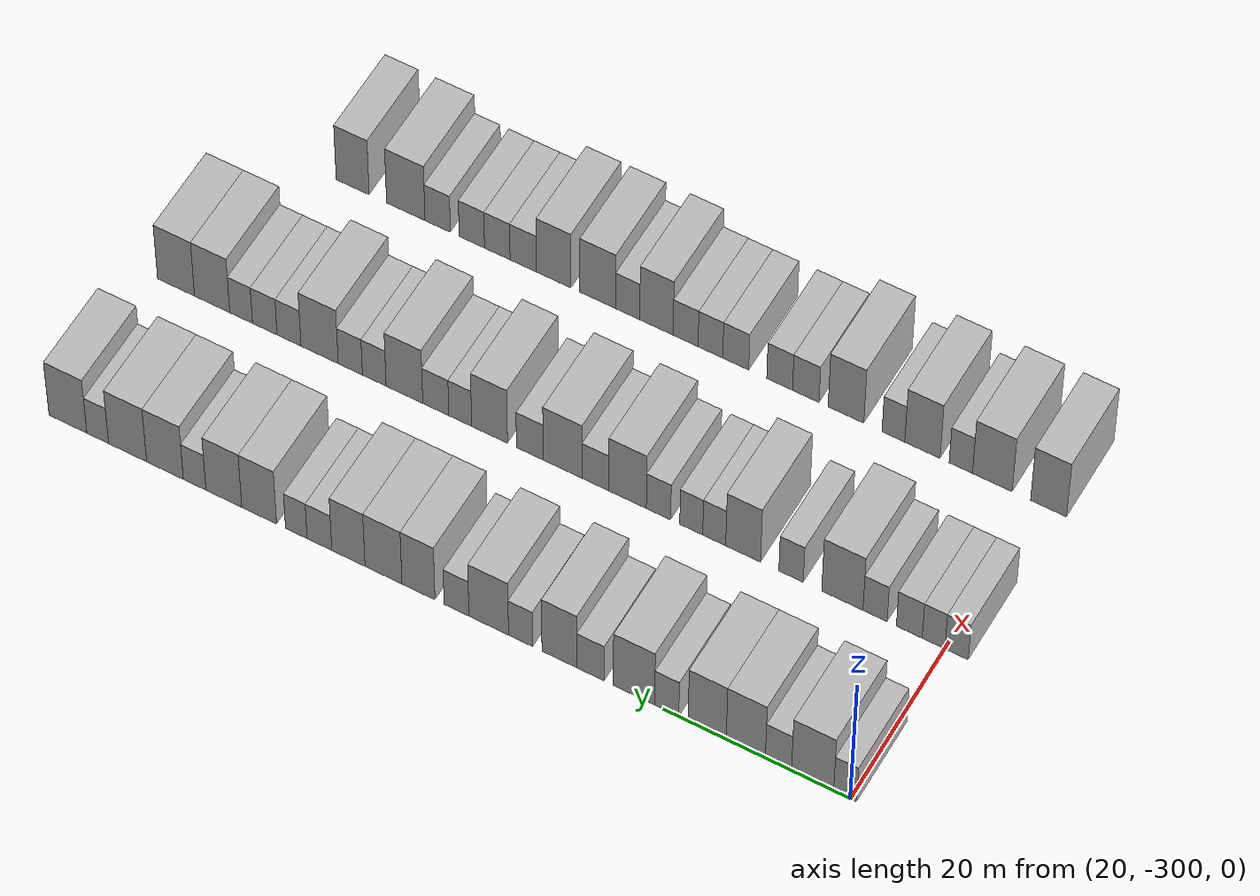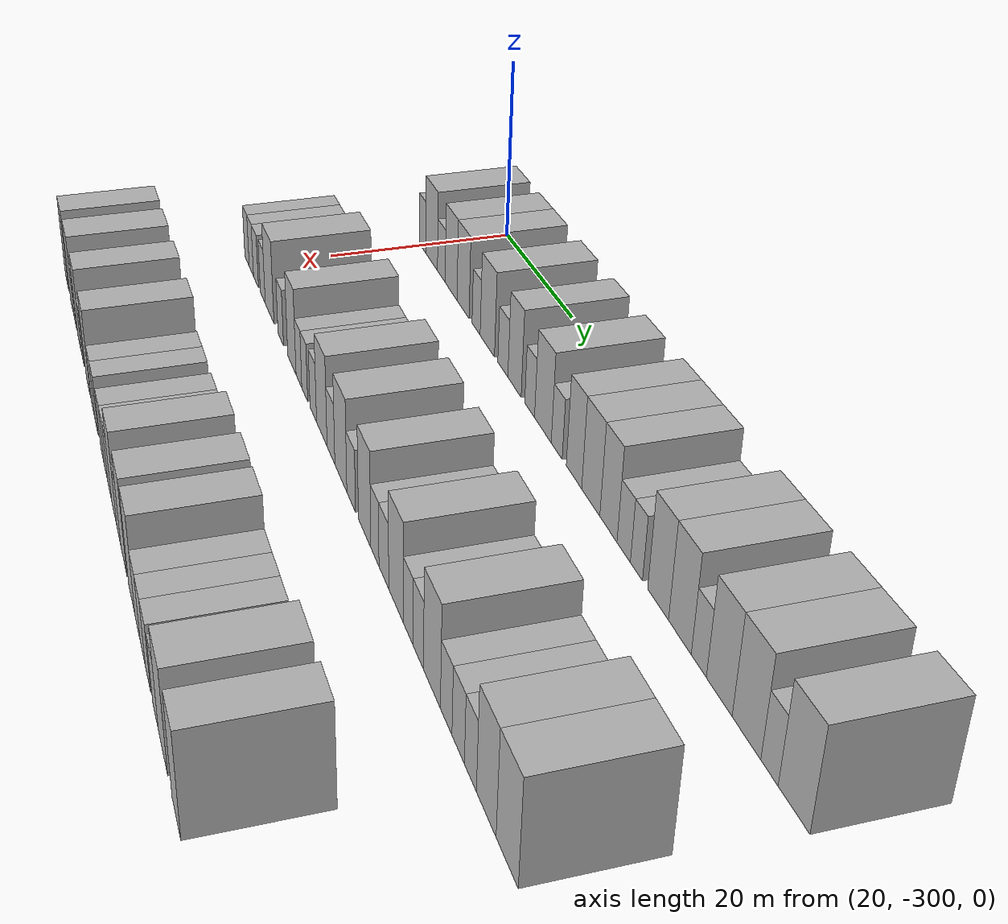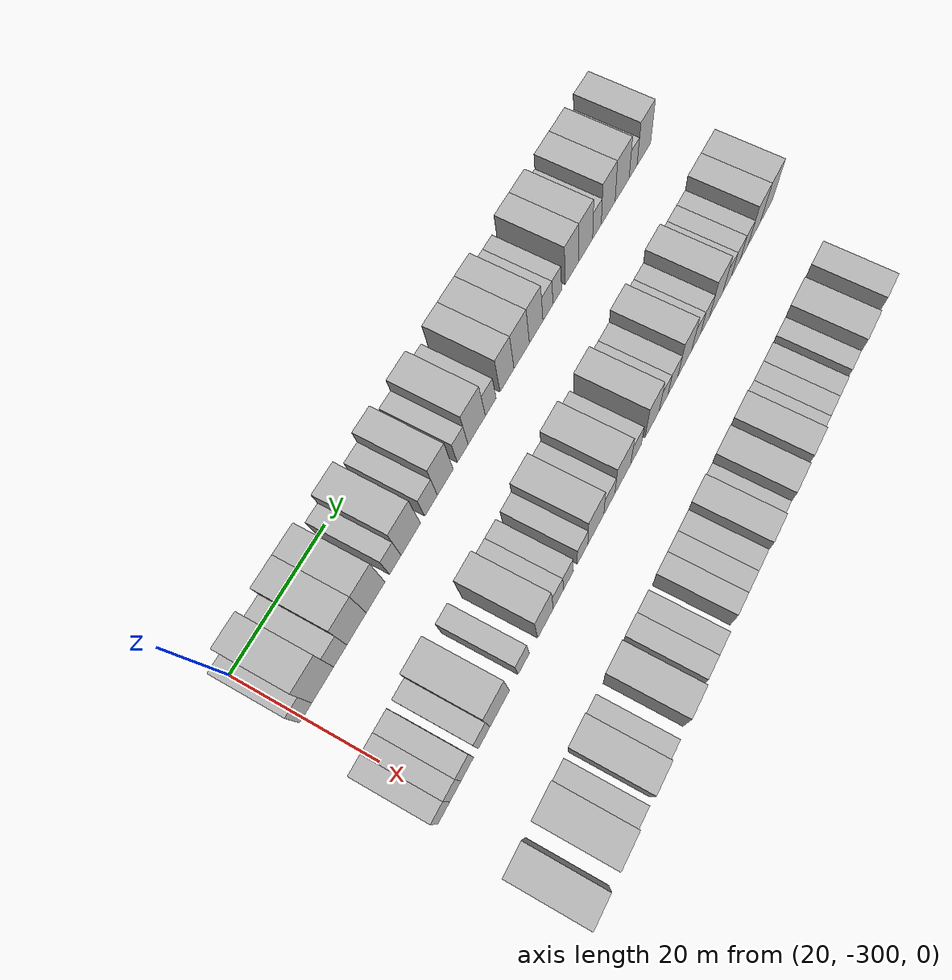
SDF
<sdf version="1.6">
 <world name="default">
  <model name="building_14">
   <static>1</static>
   <pose>25.0000 -299.3981 0 0.000000 0.000000 0.000000</pose>
   <link name="link">
    <pose>0 0 3.00 0 0 0</pose>
    <collision name="collision"><geometry><box><size>10.0000 2.4443 6.0000</size></box></geometry></collision>
    <visual name="visual">
     <cast_shadows>0</cast_shadows>
     <geometry><box><size>10.0000 2.4443 6.0000</size></box></geometry>
     <material>
      <script>
       <uri>model://HANNAS_wall/materials/scripts</uri>
       <uri>model://HANNAS_wall/materials/textures</uri>
       <name>vrc/HANNAS_wall</name>
      </script>
     </material>
    </visual>
   </link>
  </model>
  <model name="building_15">
   <static>1</static>
   <pose>25.0000 -295.9306 0 0.000000 0.000000 0.000000</pose>
   <link name="link">
    <pose>0 0 4.50 0 0 0</pose>
    <collision name="collision"><geometry><box><size>10.0000 4.4907 9.0000</size></box></geometry></collision>
    <visual name="visual">
     <cast_shadows>0</cast_shadows>
     <geometry><box><size>10.0000 4.4907 9.0000</size></box></geometry>
     <material>
      <script>
       <uri>model://HANNAS_wall/materials/scripts</uri>
       <uri>model://HANNAS_wall/materials/textures</uri>
       <name>vrc/HANNAS_wall</name>
      </script>
     </material>
    </visual>
   </link>
  </model>
  <model name="building_16">
   <static>1</static>
   <pose>25.0000 -292.2877 0 0.000000 0.000000 0.000000</pose>
   <link name="link">
    <pose>0 0 3.00 0 0 0</pose>
    <collision name="collision"><geometry><box><size>10.0000 2.7952 6.0000</size></box></geometry></collision>
    <visual name="visual">
     <cast_shadows>0</cast_shadows>
     <geometry><box><size>10.0000 2.7952 6.0000</size></box></geometry>
     <material>
      <script>
       <uri>model://HANNAS_wall/materials/scripts</uri>
       <uri>model://HANNAS_wall/materials/textures</uri>
       <name>vrc/HANNAS_wall</name>
      </script>
     </material>
    </visual>
   </link>
  </model>
  <model name="building_17">
   <static>1</static>
   <pose>25.0000 -288.7944 0 0.000000 0.000000 0.000000</pose>
   <link name="link">
    <pose>0 0 4.50 0 0 0</pose>
    <collision name="collision"><geometry><box><size>10.0000 4.1914 9.0000</size></box></geometry></collision>
    <visual name="visual">
     <cast_shadows>0</cast_shadows>
     <geometry><box><size>10.0000 4.1914 9.0000</size></box></geometry>
     <material>
      <script>
       <uri>model://HANNAS_wall/materials/scripts</uri>
       <uri>model://HANNAS_wall/materials/textures</uri>
       <name>vrc/HANNAS_wall</name>
      </script>
     </material>
    </visual>
   </link>
  </model>
  <model name="building_18">
   <static>1</static>
   <pose>25.0000 -284.6509 0 0.000000 0.000000 0.000000</pose>
   <link name="link">
    <pose>0 0 4.50 0 0 0</pose>
    <collision name="collision"><geometry><box><size>10.0000 4.0955 9.0000</size></box></geometry></collision>
    <visual name="visual">
     <cast_shadows>0</cast_shadows>
     <geometry><box><size>10.0000 4.0955 9.0000</size></box></geometry>
     <material>
      <script>
       <uri>model://HANNAS_wall/materials/scripts</uri>
       <uri>model://HANNAS_wall/materials/textures</uri>
       <name>vrc/HANNAS_wall</name>
      </script>
     </material>
    </visual>
   </link>
  </model>
  <model name="building_19">
   <static>1</static>
   <pose>25.0000 -280.2972 0 0.000000 0.000000 0.000000</pose>
   <link name="link">
    <pose>0 0 3.00 0 0 0</pose>
    <collision name="collision"><geometry><box><size>10.0000 2.6119 6.0000</size></box></geometry></collision>
    <visual name="visual">
     <cast_shadows>0</cast_shadows>
     <geometry><box><size>10.0000 2.6119 6.0000</size></box></geometry>
     <material>
      <script>
       <uri>model://HANNAS_wall/materials/scripts</uri>
       <uri>model://HANNAS_wall/materials/textures</uri>
       <name>vrc/HANNAS_wall</name>
      </script>
     </material>
    </visual>
   </link>
  </model>
  <model name="building_20">
   <static>1</static>
   <pose>25.0000 -276.7562 0 0.000000 0.000000 0.000000</pose>
   <link name="link">
    <pose>0 0 4.50 0 0 0</pose>
    <collision name="collision"><geometry><box><size>10.0000 4.4702 9.0000</size></box></geometry></collision>
    <visual name="visual">
     <cast_shadows>0</cast_shadows>
     <geometry><box><size>10.0000 4.4702 9.0000</size></box></geometry>
     <material>
      <script>
       <uri>model://HANNAS_wall/materials/scripts</uri>
       <uri>model://HANNAS_wall/materials/textures</uri>
       <name>vrc/HANNAS_wall</name>
      </script>
     </material>
    </visual>
   </link>
  </model>
  <model name="building_21">
   <static>1</static>
   <pose>25.0000 -272.0339 0 0.000000 0.000000 0.000000</pose>
   <link name="link">
    <pose>0 0 3.00 0 0 0</pose>
    <collision name="collision"><geometry><box><size>10.0000 2.9745 6.0000</size></box></geometry></collision>
    <visual name="visual">
     <cast_shadows>0</cast_shadows>
     <geometry><box><size>10.0000 2.9745 6.0000</size></box></geometry>
     <material>
      <script>
       <uri>model://HANNAS_wall/materials/scripts</uri>
       <uri>model://HANNAS_wall/materials/textures</uri>
       <name>vrc/HANNAS_wall</name>
      </script>
     </material>
    </visual>
   </link>
  </model>
  <model name="building_22">
   <static>1</static>
   <pose>25.0000 -268.6552 0 0.000000 0.000000 0.000000</pose>
   <link name="link">
    <pose>0 0 4.50 0 0 0</pose>
    <collision name="collision"><geometry><box><size>10.0000 3.7829 9.0000</size></box></geometry></collision>
    <visual name="visual">
     <cast_shadows>0</cast_shadows>
     <geometry><box><size>10.0000 3.7829 9.0000</size></box></geometry>
     <material>
      <script>
       <uri>model://HANNAS_wall/materials/scripts</uri>
       <uri>model://HANNAS_wall/materials/textures</uri>
       <name>vrc/HANNAS_wall</name>
      </script>
     </material>
    </visual>
   </link>
  </model>
  <model name="building_23">
   <static>1</static>
   <pose>25.0000 -264.4368 0 0.000000 0.000000 0.000000</pose>
   <link name="link">
    <pose>0 0 3.00 0 0 0</pose>
    <collision name="collision"><geometry><box><size>10.0000 2.6539 6.0000</size></box></geometry></collision>
    <visual name="visual">
     <cast_shadows>0</cast_shadows>
     <geometry><box><size>10.0000 2.6539 6.0000</size></box></geometry>
     <material>
      <script>
       <uri>model://HANNAS_wall/materials/scripts</uri>
       <uri>model://HANNAS_wall/materials/textures</uri>
       <name>vrc/HANNAS_wall</name>
      </script>
     </material>
    </visual>
   </link>
  </model>
  <model name="building_24">
   <static>1</static>
   <pose>25.0000 -260.9407 0 0.000000 0.000000 0.000000</pose>
   <link name="link">
    <pose>0 0 4.50 0 0 0</pose>
    <collision name="collision"><geometry><box><size>10.0000 4.3383 9.0000</size></box></geometry></collision>
    <visual name="visual">
     <cast_shadows>0</cast_shadows>
     <geometry><box><size>10.0000 4.3383 9.0000</size></box></geometry>
     <material>
      <script>
       <uri>model://HANNAS_wall/materials/scripts</uri>
       <uri>model://HANNAS_wall/materials/textures</uri>
       <name>vrc/HANNAS_wall</name>
      </script>
     </material>
    </visual>
   </link>
  </model>
  <model name="building_25">
   <static>1</static>
   <pose>25.0000 -257.4051 0 0.000000 0.000000 0.000000</pose>
   <link name="link">
    <pose>0 0 3.00 0 0 0</pose>
    <collision name="collision"><geometry><box><size>10.0000 2.7328 6.0000</size></box></geometry></collision>
    <visual name="visual">
     <cast_shadows>0</cast_shadows>
     <geometry><box><size>10.0000 2.7328 6.0000</size></box></geometry>
     <material>
      <script>
       <uri>model://HANNAS_wall/materials/scripts</uri>
       <uri>model://HANNAS_wall/materials/textures</uri>
       <name>vrc/HANNAS_wall</name>
      </script>
     </material>
    </visual>
   </link>
  </model>
  <model name="building_26">
   <static>1</static>
   <pose>25.0000 -253.2176 0 0.000000 0.000000 0.000000</pose>
   <link name="link">
    <pose>0 0 4.50 0 0 0</pose>
    <collision name="collision"><geometry><box><size>10.0000 3.6423 9.0000</size></box></geometry></collision>
    <visual name="visual">
     <cast_shadows>0</cast_shadows>
     <geometry><box><size>10.0000 3.6423 9.0000</size></box></geometry>
     <material>
      <script>
       <uri>model://HANNAS_wall/materials/scripts</uri>
       <uri>model://HANNAS_wall/materials/textures</uri>
       <name>vrc/HANNAS_wall</name>
      </script>
     </material>
    </visual>
   </link>
  </model>
  <model name="building_27">
   <static>1</static>
   <pose>25.0000 -249.3511 0 0.000000 0.000000 0.000000</pose>
   <link name="link">
    <pose>0 0 4.50 0 0 0</pose>
    <collision name="collision"><geometry><box><size>10.0000 4.0905 9.0000</size></box></geometry></collision>
    <visual name="visual">
     <cast_shadows>0</cast_shadows>
     <geometry><box><size>10.0000 4.0905 9.0000</size></box></geometry>
     <material>
      <script>
       <uri>model://HANNAS_wall/materials/scripts</uri>
       <uri>model://HANNAS_wall/materials/textures</uri>
       <name>vrc/HANNAS_wall</name>
      </script>
     </material>
    </visual>
   </link>
  </model>
  <model name="building_28">
   <static>1</static>
   <pose>25.0000 -245.4630 0 0.000000 0.000000 0.000000</pose>
   <link name="link">
    <pose>0 0 4.50 0 0 0</pose>
    <collision name="collision"><geometry><box><size>10.0000 3.6857 9.0000</size></box></geometry></collision>
    <visual name="visual">
     <cast_shadows>0</cast_shadows>
     <geometry><box><size>10.0000 3.6857 9.0000</size></box></geometry>
     <material>
      <script>
       <uri>model://HANNAS_wall/materials/scripts</uri>
       <uri>model://HANNAS_wall/materials/textures</uri>
       <name>vrc/HANNAS_wall</name>
      </script>
     </material>
    </visual>
   </link>
  </model>
  <model name="building_29">
   <static>1</static>
   <pose>25.0000 -242.2461 0 0.000000 0.000000 0.000000</pose>
   <link name="link">
    <pose>0 0 3.00 0 0 0</pose>
    <collision name="collision"><geometry><box><size>10.0000 2.7482 6.0000</size></box></geometry></collision>
    <visual name="visual">
     <cast_shadows>0</cast_shadows>
     <geometry><box><size>10.0000 2.7482 6.0000</size></box></geometry>
     <material>
      <script>
       <uri>model://HANNAS_wall/materials/scripts</uri>
       <uri>model://HANNAS_wall/materials/textures</uri>
       <name>vrc/HANNAS_wall</name>
      </script>
     </material>
    </visual>
   </link>
  </model>
  <model name="building_30">
   <static>1</static>
   <pose>25.0000 -239.6683 0 0.000000 0.000000 0.000000</pose>
   <link name="link">
    <pose>0 0 3.00 0 0 0</pose>
    <collision name="collision"><geometry><box><size>10.0000 2.4075 6.0000</size></box></geometry></collision>
    <visual name="visual">
     <cast_shadows>0</cast_shadows>
     <geometry><box><size>10.0000 2.4075 6.0000</size></box></geometry>
     <material>
      <script>
       <uri>model://HANNAS_wall/materials/scripts</uri>
       <uri>model://HANNAS_wall/materials/textures</uri>
       <name>vrc/HANNAS_wall</name>
      </script>
     </material>
    </visual>
   </link>
  </model>
  <model name="building_31">
   <static>1</static>
   <pose>25.0000 -235.5152 0 0.000000 0.000000 0.000000</pose>
   <link name="link">
    <pose>0 0 4.50 0 0 0</pose>
    <collision name="collision"><geometry><box><size>10.0000 3.8986 9.0000</size></box></geometry></collision>
    <visual name="visual">
     <cast_shadows>0</cast_shadows>
     <geometry><box><size>10.0000 3.8986 9.0000</size></box></geometry>
     <material>
      <script>
       <uri>model://HANNAS_wall/materials/scripts</uri>
       <uri>model://HANNAS_wall/materials/textures</uri>
       <name>vrc/HANNAS_wall</name>
      </script>
     </material>
    </visual>
   </link>
  </model>
  <model name="building_32">
   <static>1</static>
   <pose>25.0000 -231.5533 0 0.000000 0.000000 0.000000</pose>
   <link name="link">
    <pose>0 0 4.50 0 0 0</pose>
    <collision name="collision"><geometry><box><size>10.0000 4.0253 9.0000</size></box></geometry></collision>
    <visual name="visual">
     <cast_shadows>0</cast_shadows>
     <geometry><box><size>10.0000 4.0253 9.0000</size></box></geometry>
     <material>
      <script>
       <uri>model://HANNAS_wall/materials/scripts</uri>
       <uri>model://HANNAS_wall/materials/textures</uri>
       <name>vrc/HANNAS_wall</name>
      </script>
     </material>
    </visual>
   </link>
  </model>
  <model name="building_33">
   <static>1</static>
   <pose>25.0000 -228.2689 0 0.000000 0.000000 0.000000</pose>
   <link name="link">
    <pose>0 0 3.00 0 0 0</pose>
    <collision name="collision"><geometry><box><size>10.0000 2.5436 6.0000</size></box></geometry></collision>
    <visual name="visual">
     <cast_shadows>0</cast_shadows>
     <geometry><box><size>10.0000 2.5436 6.0000</size></box></geometry>
     <material>
      <script>
       <uri>model://HANNAS_wall/materials/scripts</uri>
       <uri>model://HANNAS_wall/materials/textures</uri>
       <name>vrc/HANNAS_wall</name>
      </script>
     </material>
    </visual>
   </link>
  </model>
  <model name="building_34">
   <static>1</static>
   <pose>25.0000 -224.9257 0 0.000000 0.000000 0.000000</pose>
   <link name="link">
    <pose>0 0 4.50 0 0 0</pose>
    <collision name="collision"><geometry><box><size>10.0000 4.1428 9.0000</size></box></geometry></collision>
    <visual name="visual">
     <cast_shadows>0</cast_shadows>
     <geometry><box><size>10.0000 4.1428 9.0000</size></box></geometry>
     <material>
      <script>
       <uri>model://HANNAS_wall/materials/scripts</uri>
       <uri>model://HANNAS_wall/materials/textures</uri>
       <name>vrc/HANNAS_wall</name>
      </script>
     </material>
    </visual>
   </link>
  </model>
  <model name="building_35">
   <static>1</static>
   <pose>25.0000 -220.6981 0 0.000000 0.000000 0.000000</pose>
   <link name="link">
    <pose>0 0 4.50 0 0 0</pose>
    <collision name="collision"><geometry><box><size>10.0000 4.3123 9.0000</size></box></geometry></collision>
    <visual name="visual">
     <cast_shadows>0</cast_shadows>
     <geometry><box><size>10.0000 4.3123 9.0000</size></box></geometry>
     <material>
      <script>
       <uri>model://HANNAS_wall/materials/scripts</uri>
       <uri>model://HANNAS_wall/materials/textures</uri>
       <name>vrc/HANNAS_wall</name>
      </script>
     </material>
    </visual>
   </link>
  </model>
  <model name="building_36">
   <static>1</static>
   <pose>25.0000 -217.3128 0 0.000000 0.000000 0.000000</pose>
   <link name="link">
    <pose>0 0 3.00 0 0 0</pose>
    <collision name="collision"><geometry><box><size>10.0000 2.4584 6.0000</size></box></geometry></collision>
    <visual name="visual">
     <cast_shadows>0</cast_shadows>
     <geometry><box><size>10.0000 2.4584 6.0000</size></box></geometry>
     <material>
      <script>
       <uri>model://HANNAS_wall/materials/scripts</uri>
       <uri>model://HANNAS_wall/materials/textures</uri>
       <name>vrc/HANNAS_wall</name>
      </script>
     </material>
    </visual>
   </link>
  </model>
  <model name="building_37">
   <static>1</static>
   <pose>25.0000 -213.9316 0 0.000000 0.000000 0.000000</pose>
   <link name="link">
    <pose>0 0 4.50 0 0 0</pose>
    <collision name="collision"><geometry><box><size>10.0000 4.3039 9.0000</size></box></geometry></collision>
    <visual name="visual">
     <cast_shadows>0</cast_shadows>
     <geometry><box><size>10.0000 4.3039 9.0000</size></box></geometry>
     <material>
      <script>
       <uri>model://HANNAS_wall/materials/scripts</uri>
       <uri>model://HANNAS_wall/materials/textures</uri>
       <name>vrc/HANNAS_wall</name>
      </script>
     </material>
    </visual>
   </link>
  </model>
  <model name="building_184">
   <static>1</static>
   <pose>44.0000 -301.1924 0 0.000000 0.000000 0.000000</pose>
   <link name="link">
    <pose>0 0 3.00 0 0 0</pose>
    <collision name="collision"><geometry><box><size>10.0000 2.4932 6.0000</size></box></geometry></collision>
    <visual name="visual">
     <cast_shadows>0</cast_shadows>
     <geometry><box><size>10.0000 2.4932 6.0000</size></box></geometry>
     <material>
      <script>
       <uri>model://HANNAS_wall/materials/scripts</uri>
       <uri>model://HANNAS_wall/materials/textures</uri>
       <name>vrc/HANNAS_wall</name>
      </script>
     </material>
    </visual>
   </link>
  </model>
  <model name="building_185">
   <static>1</static>
   <pose>44.0000 -298.7267 0 0.000000 0.000000 0.000000</pose>
   <link name="link">
    <pose>0 0 3.00 0 0 0</pose>
    <collision name="collision"><geometry><box><size>10.0000 2.4382 6.0000</size></box></geometry></collision>
    <visual name="visual">
     <cast_shadows>0</cast_shadows>
     <geometry><box><size>10.0000 2.4382 6.0000</size></box></geometry>
     <material>
      <script>
       <uri>model://HANNAS_wall/materials/scripts</uri>
       <uri>model://HANNAS_wall/materials/textures</uri>
       <name>vrc/HANNAS_wall</name>
      </script>
     </material>
    </visual>
   </link>
  </model>
  <model name="building_186">
   <static>1</static>
   <pose>44.0000 -296.1205 0 0.000000 0.000000 0.000000</pose>
   <link name="link">
    <pose>0 0 3.00 0 0 0</pose>
    <collision name="collision"><geometry><box><size>10.0000 2.7741 6.0000</size></box></geometry></collision>
    <visual name="visual">
     <cast_shadows>0</cast_shadows>
     <geometry><box><size>10.0000 2.7741 6.0000</size></box></geometry>
     <material>
      <script>
       <uri>model://HANNAS_wall/materials/scripts</uri>
       <uri>model://HANNAS_wall/materials/textures</uri>
       <name>vrc/HANNAS_wall</name>
      </script>
     </material>
    </visual>
   </link>
  </model>
  <model name="building_187">
   <static>1</static>
   <pose>44.0000 -292.4271 0 0.000000 0.000000 0.000000</pose>
   <link name="link">
    <pose>0 0 3.00 0 0 0</pose>
    <collision name="collision"><geometry><box><size>10.0000 2.6128 6.0000</size></box></geometry></collision>
    <visual name="visual">
     <cast_shadows>0</cast_shadows>
     <geometry><box><size>10.0000 2.6128 6.0000</size></box></geometry>
     <material>
      <script>
       <uri>model://HANNAS_wall/materials/scripts</uri>
       <uri>model://HANNAS_wall/materials/textures</uri>
       <name>vrc/HANNAS_wall</name>
      </script>
     </material>
    </visual>
   </link>
  </model>
  <model name="building_188">
   <static>1</static>
   <pose>44.0000 -288.8939 0 0.000000 0.000000 0.000000</pose>
   <link name="link">
    <pose>0 0 4.50 0 0 0</pose>
    <collision name="collision"><geometry><box><size>10.0000 4.4536 9.0000</size></box></geometry></collision>
    <visual name="visual">
     <cast_shadows>0</cast_shadows>
     <geometry><box><size>10.0000 4.4536 9.0000</size></box></geometry>
     <material>
      <script>
       <uri>model://HANNAS_wall/materials/scripts</uri>
       <uri>model://HANNAS_wall/materials/textures</uri>
       <name>vrc/HANNAS_wall</name>
      </script>
     </material>
    </visual>
   </link>
  </model>
  <model name="building_189">
   <static>1</static>
   <pose>44.0000 -283.3389 0 0.000000 0.000000 0.000000</pose>
   <link name="link">
    <pose>0 0 3.00 0 0 0</pose>
    <collision name="collision"><geometry><box><size>10.0000 2.6565 6.0000</size></box></geometry></collision>
    <visual name="visual">
     <cast_shadows>0</cast_shadows>
     <geometry><box><size>10.0000 2.6565 6.0000</size></box></geometry>
     <material>
      <script>
       <uri>model://HANNAS_wall/materials/scripts</uri>
       <uri>model://HANNAS_wall/materials/textures</uri>
       <name>vrc/HANNAS_wall</name>
      </script>
     </material>
    </visual>
   </link>
  </model>
  <model name="building_190">
   <static>1</static>
   <pose>44.0000 -278.1129 0 0.000000 0.000000 0.000000</pose>
   <link name="link">
    <pose>0 0 4.50 0 0 0</pose>
    <collision name="collision"><geometry><box><size>10.0000 3.7954 9.0000</size></box></geometry></collision>
    <visual name="visual">
     <cast_shadows>0</cast_shadows>
     <geometry><box><size>10.0000 3.7954 9.0000</size></box></geometry>
     <material>
      <script>
       <uri>model://HANNAS_wall/materials/scripts</uri>
       <uri>model://HANNAS_wall/materials/textures</uri>
       <name>vrc/HANNAS_wall</name>
      </script>
     </material>
    </visual>
   </link>
  </model>
  <model name="building_191">
   <static>1</static>
   <pose>44.0000 -274.9564 0 0.000000 0.000000 0.000000</pose>
   <link name="link">
    <pose>0 0 3.00 0 0 0</pose>
    <collision name="collision"><geometry><box><size>10.0000 2.5177 6.0000</size></box></geometry></collision>
    <visual name="visual">
     <cast_shadows>0</cast_shadows>
     <geometry><box><size>10.0000 2.5177 6.0000</size></box></geometry>
     <material>
      <script>
       <uri>model://HANNAS_wall/materials/scripts</uri>
       <uri>model://HANNAS_wall/materials/textures</uri>
       <name>vrc/HANNAS_wall</name>
      </script>
     </material>
    </visual>
   </link>
  </model>
  <model name="building_192">
   <static>1</static>
   <pose>44.0000 -272.4423 0 0.000000 0.000000 0.000000</pose>
   <link name="link">
    <pose>0 0 3.00 0 0 0</pose>
    <collision name="collision"><geometry><box><size>10.0000 2.5103 6.0000</size></box></geometry></collision>
    <visual name="visual">
     <cast_shadows>0</cast_shadows>
     <geometry><box><size>10.0000 2.5103 6.0000</size></box></geometry>
     <material>
      <script>
       <uri>model://HANNAS_wall/materials/scripts</uri>
       <uri>model://HANNAS_wall/materials/textures</uri>
       <name>vrc/HANNAS_wall</name>
      </script>
     </material>
    </visual>
   </link>
  </model>
  <model name="building_193">
   <static>1</static>
   <pose>44.0000 -268.8474 0 0.000000 0.000000 0.000000</pose>
   <link name="link">
    <pose>0 0 3.00 0 0 0</pose>
    <collision name="collision"><geometry><box><size>10.0000 2.6795 6.0000</size></box></geometry></collision>
    <visual name="visual">
     <cast_shadows>0</cast_shadows>
     <geometry><box><size>10.0000 2.6795 6.0000</size></box></geometry>
     <material>
      <script>
       <uri>model://HANNAS_wall/materials/scripts</uri>
       <uri>model://HANNAS_wall/materials/textures</uri>
       <name>vrc/HANNAS_wall</name>
      </script>
     </material>
    </visual>
   </link>
  </model>
  <model name="building_194">
   <static>1</static>
   <pose>44.0000 -265.4346 0 0.000000 0.000000 0.000000</pose>
   <link name="link">
    <pose>0 0 4.50 0 0 0</pose>
    <collision name="collision"><geometry><box><size>10.0000 4.1463 9.0000</size></box></geometry></collision>
    <visual name="visual">
     <cast_shadows>0</cast_shadows>
     <geometry><box><size>10.0000 4.1463 9.0000</size></box></geometry>
     <material>
      <script>
       <uri>model://HANNAS_wall/materials/scripts</uri>
       <uri>model://HANNAS_wall/materials/textures</uri>
       <name>vrc/HANNAS_wall</name>
      </script>
     </material>
    </visual>
   </link>
  </model>
  <model name="building_195">
   <static>1</static>
   <pose>44.0000 -261.8901 0 0.000000 0.000000 0.000000</pose>
   <link name="link">
    <pose>0 0 3.00 0 0 0</pose>
    <collision name="collision"><geometry><box><size>10.0000 2.9425 6.0000</size></box></geometry></collision>
    <visual name="visual">
     <cast_shadows>0</cast_shadows>
     <geometry><box><size>10.0000 2.9425 6.0000</size></box></geometry>
     <material>
      <script>
       <uri>model://HANNAS_wall/materials/scripts</uri>
       <uri>model://HANNAS_wall/materials/textures</uri>
       <name>vrc/HANNAS_wall</name>
      </script>
     </material>
    </visual>
   </link>
  </model>
  <model name="building_196">
   <static>1</static>
   <pose>44.0000 -258.2585 0 0.000000 0.000000 0.000000</pose>
   <link name="link">
    <pose>0 0 4.50 0 0 0</pose>
    <collision name="collision"><geometry><box><size>10.0000 4.3207 9.0000</size></box></geometry></collision>
    <visual name="visual">
     <cast_shadows>0</cast_shadows>
     <geometry><box><size>10.0000 4.3207 9.0000</size></box></geometry>
     <material>
      <script>
       <uri>model://HANNAS_wall/materials/scripts</uri>
       <uri>model://HANNAS_wall/materials/textures</uri>
       <name>vrc/HANNAS_wall</name>
      </script>
     </material>
    </visual>
   </link>
  </model>
  <model name="building_197">
   <static>1</static>
   <pose>44.0000 -254.6154 0 0.000000 0.000000 0.000000</pose>
   <link name="link">
    <pose>0 0 3.00 0 0 0</pose>
    <collision name="collision"><geometry><box><size>10.0000 2.9656 6.0000</size></box></geometry></collision>
    <visual name="visual">
     <cast_shadows>0</cast_shadows>
     <geometry><box><size>10.0000 2.9656 6.0000</size></box></geometry>
     <material>
      <script>
       <uri>model://HANNAS_wall/materials/scripts</uri>
       <uri>model://HANNAS_wall/materials/textures</uri>
       <name>vrc/HANNAS_wall</name>
      </script>
     </material>
    </visual>
   </link>
  </model>
  <model name="building_198">
   <static>1</static>
   <pose>44.0000 -250.1329 0 0.000000 0.000000 0.000000</pose>
   <link name="link">
    <pose>0 0 4.50 0 0 0</pose>
    <collision name="collision"><geometry><box><size>10.0000 3.9993 9.0000</size></box></geometry></collision>
    <visual name="visual">
     <cast_shadows>0</cast_shadows>
     <geometry><box><size>10.0000 3.9993 9.0000</size></box></geometry>
     <material>
      <script>
       <uri>model://HANNAS_wall/materials/scripts</uri>
       <uri>model://HANNAS_wall/materials/textures</uri>
       <name>vrc/HANNAS_wall</name>
      </script>
     </material>
    </visual>
   </link>
  </model>
  <model name="building_199">
   <static>1</static>
   <pose>44.0000 -246.8532 0 0.000000 0.000000 0.000000</pose>
   <link name="link">
    <pose>0 0 3.00 0 0 0</pose>
    <collision name="collision"><geometry><box><size>10.0000 2.5602 6.0000</size></box></geometry></collision>
    <visual name="visual">
     <cast_shadows>0</cast_shadows>
     <geometry><box><size>10.0000 2.5602 6.0000</size></box></geometry>
     <material>
      <script>
       <uri>model://HANNAS_wall/materials/scripts</uri>
       <uri>model://HANNAS_wall/materials/textures</uri>
       <name>vrc/HANNAS_wall</name>
      </script>
     </material>
    </visual>
   </link>
  </model>
  <model name="building_200">
   <static>1</static>
   <pose>44.0000 -244.1136 0 0.000000 0.000000 0.000000</pose>
   <link name="link">
    <pose>0 0 3.00 0 0 0</pose>
    <collision name="collision"><geometry><box><size>10.0000 2.9191 6.0000</size></box></geometry></collision>
    <visual name="visual">
     <cast_shadows>0</cast_shadows>
     <geometry><box><size>10.0000 2.9191 6.0000</size></box></geometry>
     <material>
      <script>
       <uri>model://HANNAS_wall/materials/scripts</uri>
       <uri>model://HANNAS_wall/materials/textures</uri>
       <name>vrc/HANNAS_wall</name>
      </script>
     </material>
    </visual>
   </link>
  </model>
  <model name="building_201">
   <static>1</static>
   <pose>44.0000 -240.5940 0 0.000000 0.000000 0.000000</pose>
   <link name="link">
    <pose>0 0 4.50 0 0 0</pose>
    <collision name="collision"><geometry><box><size>10.0000 4.1201 9.0000</size></box></geometry></collision>
    <visual name="visual">
     <cast_shadows>0</cast_shadows>
     <geometry><box><size>10.0000 4.1201 9.0000</size></box></geometry>
     <material>
      <script>
       <uri>model://HANNAS_wall/materials/scripts</uri>
       <uri>model://HANNAS_wall/materials/textures</uri>
       <name>vrc/HANNAS_wall</name>
      </script>
     </material>
    </visual>
   </link>
  </model>
  <model name="building_202">
   <static>1</static>
   <pose>44.0000 -237.1974 0 0.000000 0.000000 0.000000</pose>
   <link name="link">
    <pose>0 0 3.00 0 0 0</pose>
    <collision name="collision"><geometry><box><size>10.0000 2.6731 6.0000</size></box></geometry></collision>
    <visual name="visual">
     <cast_shadows>0</cast_shadows>
     <geometry><box><size>10.0000 2.6731 6.0000</size></box></geometry>
     <material>
      <script>
       <uri>model://HANNAS_wall/materials/scripts</uri>
       <uri>model://HANNAS_wall/materials/textures</uri>
       <name>vrc/HANNAS_wall</name>
      </script>
     </material>
    </visual>
   </link>
  </model>
  <model name="building_203">
   <static>1</static>
   <pose>44.0000 -234.4923 0 0.000000 0.000000 0.000000</pose>
   <link name="link">
    <pose>0 0 3.00 0 0 0</pose>
    <collision name="collision"><geometry><box><size>10.0000 2.7370 6.0000</size></box></geometry></collision>
    <visual name="visual">
     <cast_shadows>0</cast_shadows>
     <geometry><box><size>10.0000 2.7370 6.0000</size></box></geometry>
     <material>
      <script>
       <uri>model://HANNAS_wall/materials/scripts</uri>
       <uri>model://HANNAS_wall/materials/textures</uri>
       <name>vrc/HANNAS_wall</name>
      </script>
     </material>
    </visual>
   </link>
  </model>
  <model name="building_204">
   <static>1</static>
   <pose>44.0000 -231.0156 0 0.000000 0.000000 0.000000</pose>
   <link name="link">
    <pose>0 0 4.50 0 0 0</pose>
    <collision name="collision"><geometry><box><size>10.0000 4.2165 9.0000</size></box></geometry></collision>
    <visual name="visual">
     <cast_shadows>0</cast_shadows>
     <geometry><box><size>10.0000 4.2165 9.0000</size></box></geometry>
     <material>
      <script>
       <uri>model://HANNAS_wall/materials/scripts</uri>
       <uri>model://HANNAS_wall/materials/textures</uri>
       <name>vrc/HANNAS_wall</name>
      </script>
     </material>
    </visual>
   </link>
  </model>
  <model name="building_205">
   <static>1</static>
   <pose>44.0000 -227.5448 0 0.000000 0.000000 0.000000</pose>
   <link name="link">
    <pose>0 0 3.00 0 0 0</pose>
    <collision name="collision"><geometry><box><size>10.0000 2.7251 6.0000</size></box></geometry></collision>
    <visual name="visual">
     <cast_shadows>0</cast_shadows>
     <geometry><box><size>10.0000 2.7251 6.0000</size></box></geometry>
     <material>
      <script>
       <uri>model://HANNAS_wall/materials/scripts</uri>
       <uri>model://HANNAS_wall/materials/textures</uri>
       <name>vrc/HANNAS_wall</name>
      </script>
     </material>
    </visual>
   </link>
  </model>
  <model name="building_206">
   <static>1</static>
   <pose>44.0000 -224.7829 0 0.000000 0.000000 0.000000</pose>
   <link name="link">
    <pose>0 0 3.00 0 0 0</pose>
    <collision name="collision"><geometry><box><size>10.0000 2.7988 6.0000</size></box></geometry></collision>
    <visual name="visual">
     <cast_shadows>0</cast_shadows>
     <geometry><box><size>10.0000 2.7988 6.0000</size></box></geometry>
     <material>
      <script>
       <uri>model://HANNAS_wall/materials/scripts</uri>
       <uri>model://HANNAS_wall/materials/textures</uri>
       <name>vrc/HANNAS_wall</name>
      </script>
     </material>
    </visual>
   </link>
  </model>
  <model name="building_207">
   <static>1</static>
   <pose>44.0000 -222.0852 0 0.000000 0.000000 0.000000</pose>
   <link name="link">
    <pose>0 0 3.00 0 0 0</pose>
    <collision name="collision"><geometry><box><size>10.0000 2.5966 6.0000</size></box></geometry></collision>
    <visual name="visual">
     <cast_shadows>0</cast_shadows>
     <geometry><box><size>10.0000 2.5966 6.0000</size></box></geometry>
     <material>
      <script>
       <uri>model://HANNAS_wall/materials/scripts</uri>
       <uri>model://HANNAS_wall/materials/textures</uri>
       <name>vrc/HANNAS_wall</name>
      </script>
     </material>
    </visual>
   </link>
  </model>
  <model name="building_208">
   <static>1</static>
   <pose>44.0000 -218.7708 0 0.000000 0.000000 0.000000</pose>
   <link name="link">
    <pose>0 0 4.50 0 0 0</pose>
    <collision name="collision"><geometry><box><size>10.0000 4.0324 9.0000</size></box></geometry></collision>
    <visual name="visual">
     <cast_shadows>0</cast_shadows>
     <geometry><box><size>10.0000 4.0324 9.0000</size></box></geometry>
     <material>
      <script>
       <uri>model://HANNAS_wall/materials/scripts</uri>
       <uri>model://HANNAS_wall/materials/textures</uri>
       <name>vrc/HANNAS_wall</name>
      </script>
     </material>
    </visual>
   </link>
  </model>
  <model name="building_209">
   <static>1</static>
   <pose>44.0000 -214.6358 0 0.000000 0.000000 0.000000</pose>
   <link name="link">
    <pose>0 0 4.50 0 0 0</pose>
    <collision name="collision"><geometry><box><size>10.0000 4.2376 9.0000</size></box></geometry></collision>
    <visual name="visual">
     <cast_shadows>0</cast_shadows>
     <geometry><box><size>10.0000 4.2376 9.0000</size></box></geometry>
     <material>
      <script>
       <uri>model://HANNAS_wall/materials/scripts</uri>
       <uri>model://HANNAS_wall/materials/textures</uri>
       <name>vrc/HANNAS_wall</name>
      </script>
     </material>
    </visual>
   </link>
  </model>
  <model name="building_369">
   <static>1</static>
   <pose>63.0000 -301.1956 0 0.000000 0.000000 0.000000</pose>
   <link name="link">
    <pose>0 0 4.50 0 0 0</pose>
    <collision name="collision"><geometry><box><size>10.0000 3.8839 9.0000</size></box></geometry></collision>
    <visual name="visual">
     <cast_shadows>0</cast_shadows>
     <geometry><box><size>10.0000 3.8839 9.0000</size></box></geometry>
     <material>
      <script>
       <uri>model://HANNAS_wall/materials/scripts</uri>
       <uri>model://HANNAS_wall/materials/textures</uri>
       <name>vrc/HANNAS_wall</name>
      </script>
     </material>
    </visual>
   </link>
  </model>
  <model name="building_370">
   <static>1</static>
   <pose>63.0000 -295.0968 0 0.000000 0.000000 0.000000</pose>
   <link name="link">
    <pose>0 0 4.50 0 0 0</pose>
    <collision name="collision"><geometry><box><size>10.0000 4.3137 9.0000</size></box></geometry></collision>
    <visual name="visual">
     <cast_shadows>0</cast_shadows>
     <geometry><box><size>10.0000 4.3137 9.0000</size></box></geometry>
     <material>
      <script>
       <uri>model://HANNAS_wall/materials/scripts</uri>
       <uri>model://HANNAS_wall/materials/textures</uri>
       <name>vrc/HANNAS_wall</name>
      </script>
     </material>
    </visual>
   </link>
  </model>
  <model name="building_371">
   <static>1</static>
   <pose>63.0000 -291.6718 0 0.000000 0.000000 0.000000</pose>
   <link name="link">
    <pose>0 0 3.00 0 0 0</pose>
    <collision name="collision"><geometry><box><size>10.0000 2.5364 6.0000</size></box></geometry></collision>
    <visual name="visual">
     <cast_shadows>0</cast_shadows>
     <geometry><box><size>10.0000 2.5364 6.0000</size></box></geometry>
     <material>
      <script>
       <uri>model://HANNAS_wall/materials/scripts</uri>
       <uri>model://HANNAS_wall/materials/textures</uri>
       <name>vrc/HANNAS_wall</name>
      </script>
     </material>
    </visual>
   </link>
  </model>
  <model name="building_372">
   <static>1</static>
   <pose>63.0000 -287.4731 0 0.000000 0.000000 0.000000</pose>
   <link name="link">
    <pose>0 0 4.50 0 0 0</pose>
    <collision name="collision"><geometry><box><size>10.0000 3.8609 9.0000</size></box></geometry></collision>
    <visual name="visual">
     <cast_shadows>0</cast_shadows>
     <geometry><box><size>10.0000 3.8609 9.0000</size></box></geometry>
     <material>
      <script>
       <uri>model://HANNAS_wall/materials/scripts</uri>
       <uri>model://HANNAS_wall/materials/textures</uri>
       <name>vrc/HANNAS_wall</name>
      </script>
     </material>
    </visual>
   </link>
  </model>
  <model name="building_373">
   <static>1</static>
   <pose>63.0000 -284.2999 0 0.000000 0.000000 0.000000</pose>
   <link name="link">
    <pose>0 0 3.00 0 0 0</pose>
    <collision name="collision"><geometry><box><size>10.0000 2.4855 6.0000</size></box></geometry></collision>
    <visual name="visual">
     <cast_shadows>0</cast_shadows>
     <geometry><box><size>10.0000 2.4855 6.0000</size></box></geometry>
     <material>
      <script>
       <uri>model://HANNAS_wall/materials/scripts</uri>
       <uri>model://HANNAS_wall/materials/textures</uri>
       <name>vrc/HANNAS_wall</name>
      </script>
     </material>
    </visual>
   </link>
  </model>
  <model name="building_374">
   <static>1</static>
   <pose>63.0000 -279.0918 0 0.000000 0.000000 0.000000</pose>
   <link name="link">
    <pose>0 0 4.50 0 0 0</pose>
    <collision name="collision"><geometry><box><size>10.0000 3.9307 9.0000</size></box></geometry></collision>
    <visual name="visual">
     <cast_shadows>0</cast_shadows>
     <geometry><box><size>10.0000 3.9307 9.0000</size></box></geometry>
     <material>
      <script>
       <uri>model://HANNAS_wall/materials/scripts</uri>
       <uri>model://HANNAS_wall/materials/textures</uri>
       <name>vrc/HANNAS_wall</name>
      </script>
     </material>
    </visual>
   </link>
  </model>
  <model name="building_375">
   <static>1</static>
   <pose>63.0000 -274.6577 0 0.000000 0.000000 0.000000</pose>
   <link name="link">
    <pose>0 0 3.00 0 0 0</pose>
    <collision name="collision"><geometry><box><size>10.0000 2.9374 6.0000</size></box></geometry></collision>
    <visual name="visual">
     <cast_shadows>0</cast_shadows>
     <geometry><box><size>10.0000 2.9374 6.0000</size></box></geometry>
     <material>
      <script>
       <uri>model://HANNAS_wall/materials/scripts</uri>
       <uri>model://HANNAS_wall/materials/textures</uri>
       <name>vrc/HANNAS_wall</name>
      </script>
     </material>
    </visual>
   </link>
  </model>
  <model name="building_376">
   <static>1</static>
   <pose>63.0000 -271.7654 0 0.000000 0.000000 0.000000</pose>
   <link name="link">
    <pose>0 0 3.00 0 0 0</pose>
    <collision name="collision"><geometry><box><size>10.0000 2.8472 6.0000</size></box></geometry></collision>
    <visual name="visual">
     <cast_shadows>0</cast_shadows>
     <geometry><box><size>10.0000 2.8472 6.0000</size></box></geometry>
     <material>
      <script>
       <uri>model://HANNAS_wall/materials/scripts</uri>
       <uri>model://HANNAS_wall/materials/textures</uri>
       <name>vrc/HANNAS_wall</name>
      </script>
     </material>
    </visual>
   </link>
  </model>
  <model name="building_377">
   <static>1</static>
   <pose>63.0000 -266.8979 0 0.000000 0.000000 0.000000</pose>
   <link name="link">
    <pose>0 0 3.00 0 0 0</pose>
    <collision name="collision"><geometry><box><size>10.0000 2.8879 6.0000</size></box></geometry></collision>
    <visual name="visual">
     <cast_shadows>0</cast_shadows>
     <geometry><box><size>10.0000 2.8879 6.0000</size></box></geometry>
     <material>
      <script>
       <uri>model://HANNAS_wall/materials/scripts</uri>
       <uri>model://HANNAS_wall/materials/textures</uri>
       <name>vrc/HANNAS_wall</name>
      </script>
     </material>
    </visual>
   </link>
  </model>
  <model name="building_378">
   <static>1</static>
   <pose>63.0000 -264.0819 0 0.000000 0.000000 0.000000</pose>
   <link name="link">
    <pose>0 0 3.00 0 0 0</pose>
    <collision name="collision"><geometry><box><size>10.0000 2.7442 6.0000</size></box></geometry></collision>
    <visual name="visual">
     <cast_shadows>0</cast_shadows>
     <geometry><box><size>10.0000 2.7442 6.0000</size></box></geometry>
     <material>
      <script>
       <uri>model://HANNAS_wall/materials/scripts</uri>
       <uri>model://HANNAS_wall/materials/textures</uri>
       <name>vrc/HANNAS_wall</name>
      </script>
     </material>
    </visual>
   </link>
  </model>
  <model name="building_379">
   <static>1</static>
   <pose>63.0000 -261.3155 0 0.000000 0.000000 0.000000</pose>
   <link name="link">
    <pose>0 0 3.00 0 0 0</pose>
    <collision name="collision"><geometry><box><size>10.0000 2.7886 6.0000</size></box></geometry></collision>
    <visual name="visual">
     <cast_shadows>0</cast_shadows>
     <geometry><box><size>10.0000 2.7886 6.0000</size></box></geometry>
     <material>
      <script>
       <uri>model://HANNAS_wall/materials/scripts</uri>
       <uri>model://HANNAS_wall/materials/textures</uri>
       <name>vrc/HANNAS_wall</name>
      </script>
     </material>
    </visual>
   </link>
  </model>
  <model name="building_380">
   <static>1</static>
   <pose>63.0000 -258.0516 0 0.000000 0.000000 0.000000</pose>
   <link name="link">
    <pose>0 0 4.50 0 0 0</pose>
    <collision name="collision"><geometry><box><size>10.0000 3.7391 9.0000</size></box></geometry></collision>
    <visual name="visual">
     <cast_shadows>0</cast_shadows>
     <geometry><box><size>10.0000 3.7391 9.0000</size></box></geometry>
     <material>
      <script>
       <uri>model://HANNAS_wall/materials/scripts</uri>
       <uri>model://HANNAS_wall/materials/textures</uri>
       <name>vrc/HANNAS_wall</name>
      </script>
     </material>
    </visual>
   </link>
  </model>
  <model name="building_381">
   <static>1</static>
   <pose>63.0000 -254.8234 0 0.000000 0.000000 0.000000</pose>
   <link name="link">
    <pose>0 0 3.00 0 0 0</pose>
    <collision name="collision"><geometry><box><size>10.0000 2.7173 6.0000</size></box></geometry></collision>
    <visual name="visual">
     <cast_shadows>0</cast_shadows>
     <geometry><box><size>10.0000 2.7173 6.0000</size></box></geometry>
     <material>
      <script>
       <uri>model://HANNAS_wall/materials/scripts</uri>
       <uri>model://HANNAS_wall/materials/textures</uri>
       <name>vrc/HANNAS_wall</name>
      </script>
     </material>
    </visual>
   </link>
  </model>
  <model name="building_382">
   <static>1</static>
   <pose>63.0000 -251.4606 0 0.000000 0.000000 0.000000</pose>
   <link name="link">
    <pose>0 0 4.50 0 0 0</pose>
    <collision name="collision"><geometry><box><size>10.0000 4.0083 9.0000</size></box></geometry></collision>
    <visual name="visual">
     <cast_shadows>0</cast_shadows>
     <geometry><box><size>10.0000 4.0083 9.0000</size></box></geometry>
     <material>
      <script>
       <uri>model://HANNAS_wall/materials/scripts</uri>
       <uri>model://HANNAS_wall/materials/textures</uri>
       <name>vrc/HANNAS_wall</name>
      </script>
     </material>
    </visual>
   </link>
  </model>
  <model name="building_383">
   <static>1</static>
   <pose>63.0000 -246.5069 0 0.000000 0.000000 0.000000</pose>
   <link name="link">
    <pose>0 0 4.50 0 0 0</pose>
    <collision name="collision"><geometry><box><size>10.0000 3.8991 9.0000</size></box></geometry></collision>
    <visual name="visual">
     <cast_shadows>0</cast_shadows>
     <geometry><box><size>10.0000 3.8991 9.0000</size></box></geometry>
     <material>
      <script>
       <uri>model://HANNAS_wall/materials/scripts</uri>
       <uri>model://HANNAS_wall/materials/textures</uri>
       <name>vrc/HANNAS_wall</name>
      </script>
     </material>
    </visual>
   </link>
  </model>
  <model name="building_384">
   <static>1</static>
   <pose>63.0000 -243.0582 0 0.000000 0.000000 0.000000</pose>
   <link name="link">
    <pose>0 0 3.00 0 0 0</pose>
    <collision name="collision"><geometry><box><size>10.0000 2.9983 6.0000</size></box></geometry></collision>
    <visual name="visual">
     <cast_shadows>0</cast_shadows>
     <geometry><box><size>10.0000 2.9983 6.0000</size></box></geometry>
     <material>
      <script>
       <uri>model://HANNAS_wall/materials/scripts</uri>
       <uri>model://HANNAS_wall/materials/textures</uri>
       <name>vrc/HANNAS_wall</name>
      </script>
     </material>
    </visual>
   </link>
  </model>
  <model name="building_385">
   <static>1</static>
   <pose>63.0000 -240.1084 0 0.000000 0.000000 0.000000</pose>
   <link name="link">
    <pose>0 0 3.00 0 0 0</pose>
    <collision name="collision"><geometry><box><size>10.0000 2.9013 6.0000</size></box></geometry></collision>
    <visual name="visual">
     <cast_shadows>0</cast_shadows>
     <geometry><box><size>10.0000 2.9013 6.0000</size></box></geometry>
     <material>
      <script>
       <uri>model://HANNAS_wall/materials/scripts</uri>
       <uri>model://HANNAS_wall/materials/textures</uri>
       <name>vrc/HANNAS_wall</name>
      </script>
     </material>
    </visual>
   </link>
  </model>
  <model name="building_386">
   <static>1</static>
   <pose>63.0000 -237.2141 0 0.000000 0.000000 0.000000</pose>
   <link name="link">
    <pose>0 0 3.00 0 0 0</pose>
    <collision name="collision"><geometry><box><size>10.0000 2.8874 6.0000</size></box></geometry></collision>
    <visual name="visual">
     <cast_shadows>0</cast_shadows>
     <geometry><box><size>10.0000 2.8874 6.0000</size></box></geometry>
     <material>
      <script>
       <uri>model://HANNAS_wall/materials/scripts</uri>
       <uri>model://HANNAS_wall/materials/textures</uri>
       <name>vrc/HANNAS_wall</name>
      </script>
     </material>
    </visual>
   </link>
  </model>
  <model name="building_387">
   <static>1</static>
   <pose>63.0000 -233.3215 0 0.000000 0.000000 0.000000</pose>
   <link name="link">
    <pose>0 0 3.00 0 0 0</pose>
    <collision name="collision"><geometry><box><size>10.0000 2.8978 6.0000</size></box></geometry></collision>
    <visual name="visual">
     <cast_shadows>0</cast_shadows>
     <geometry><box><size>10.0000 2.8978 6.0000</size></box></geometry>
     <material>
      <script>
       <uri>model://HANNAS_wall/materials/scripts</uri>
       <uri>model://HANNAS_wall/materials/textures</uri>
       <name>vrc/HANNAS_wall</name>
      </script>
     </material>
    </visual>
   </link>
  </model>
  <model name="building_388">
   <static>1</static>
   <pose>63.0000 -229.6744 0 0.000000 0.000000 0.000000</pose>
   <link name="link">
    <pose>0 0 4.50 0 0 0</pose>
    <collision name="collision"><geometry><box><size>10.0000 4.3963 9.0000</size></box></geometry></collision>
    <visual name="visual">
     <cast_shadows>0</cast_shadows>
     <geometry><box><size>10.0000 4.3963 9.0000</size></box></geometry>
     <material>
      <script>
       <uri>model://HANNAS_wall/materials/scripts</uri>
       <uri>model://HANNAS_wall/materials/textures</uri>
       <name>vrc/HANNAS_wall</name>
      </script>
     </material>
    </visual>
   </link>
  </model>
  <model name="building_389">
   <static>1</static>
   <pose>63.0000 -223.5827 0 0.000000 0.000000 0.000000</pose>
   <link name="link">
    <pose>0 0 4.50 0 0 0</pose>
    <collision name="collision"><geometry><box><size>10.0000 3.7871 9.0000</size></box></geometry></collision>
    <visual name="visual">
     <cast_shadows>0</cast_shadows>
     <geometry><box><size>10.0000 3.7871 9.0000</size></box></geometry>
     <material>
      <script>
       <uri>model://HANNAS_wall/materials/scripts</uri>
       <uri>model://HANNAS_wall/materials/textures</uri>
       <name>vrc/HANNAS_wall</name>
      </script>
     </material>
    </visual>
   </link>
  </model>
 </world>
</sdf>
